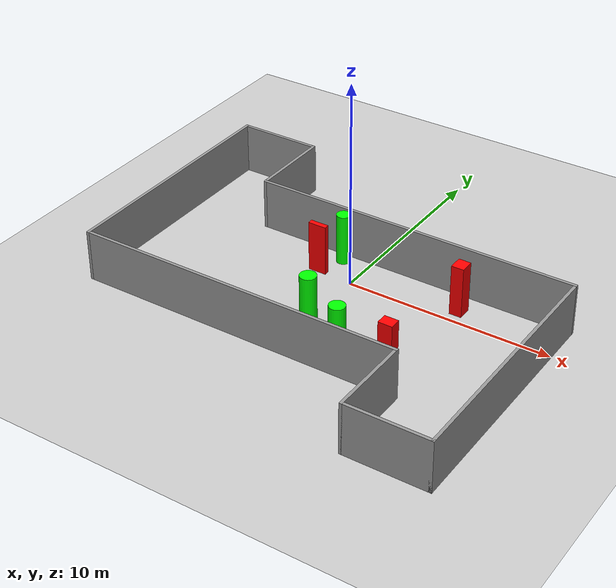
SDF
<sdf version="1.7">
 <world name="default">
  <light name="sun" type="directional">
   <pose>0 0 10 0 -0 0</pose>
   <diffuse>0.8 0.8 0.8 1</diffuse>
   <specular>0.2 0.2 0.2 1</specular>
   <attenuation>
    <range>1000</range>
    <constant>0.9</constant>
    <linear>0.01</linear>
    <quadratic>0.001</quadratic>
   </attenuation>
   <direction>-0.5 0.1 -0.9</direction>
   <spot><inner_angle>0</inner_angle><outer_angle>0</outer_angle><falloff>0</falloff></spot>
  </light>
  <model name="ground_plane">
   <static>1</static>
   <link name="link">
    <collision name="collision">
     <geometry><plane><normal>0 0 1</normal><size>100 100</size></plane></geometry>
     <surface>
      <contact><collide_bitmask>65535</collide_bitmask></contact>
      <friction><ode><mu>100</mu><mu2>50</mu2></ode></friction>
     </surface>
    </collision>
    <visual name="visual">
     <cast_shadows>0</cast_shadows>
     <geometry><plane><normal>0 0 1</normal><size>100 100</size></plane></geometry>
     <material>
      <script><uri>file://media/materials/scripts/gazebo.material</uri><name>Gazebo/Grey</name></script>
     </material>
    </visual>
   </link>
  </model>
  <gravity>0 0 -9.8</gravity>
  <magnetic_field>6e-06 2.3e-05 -4.2e-05</magnetic_field>
  <atmosphere type="adiabatic"/>
  <physics type="ode">
   <max_step_size>0.001</max_step_size>
   <real_time_factor>1</real_time_factor>
   <real_time_update_rate>1000</real_time_update_rate>
  </physics>
  <scene><ambient>0.4 0.4 0.4 1</ambient><background>0.7 0.7 0.7 1</background><shadows>1</shadows></scene>
  <spherical_coordinates>
   <surface_model>EARTH_WGS84</surface_model>
   <latitude_deg>0</latitude_deg>
   <longitude_deg>0</longitude_deg>
   <elevation>0</elevation>
   <heading_deg>0</heading_deg>
  </spherical_coordinates>
  <model name="my_base_walls">
   <link name="Wall_13">
    <collision name="Wall_13_Collision">
     <geometry><box><size>12.15 0.15 2.5</size></box></geometry>
     <pose>0 0 1.25 0 -0 0</pose>
    </collision>
    <visual name="Wall_13_Visual">
     <pose>0 0 1.25 0 -0 0</pose>
     <geometry><box><size>12.15 0.15 2.5</size></box></geometry>
     <material>
      <script><uri>file://media/materials/scripts/gazebo.material</uri><name>Gazebo/Grey</name></script>
      <ambient>1 1 1 1</ambient>
     </material>
     <meta><layer>0</layer></meta>
    </visual>
    <pose>10 -2 0 0 -0 1.5708</pose>
   </link>
   <link name="Wall_15">
    <collision name="Wall_15_Collision">
     <geometry><box><size>16.15 0.15 2.5</size></box></geometry>
     <pose>0 0 1.25 0 -0 0</pose>
    </collision>
    <visual name="Wall_15_Visual">
     <pose>0 0 1.25 0 -0 0</pose>
     <geometry><box><size>16.15 0.15 2.5</size></box></geometry>
     <material>
      <script><uri>file://media/materials/scripts/gazebo.material</uri><name>Gazebo/Grey</name></script>
      <ambient>1 1 1 1</ambient>
     </material>
     <meta><layer>0</layer></meta>
    </visual>
    <pose>2 4 0 0 -0 3.14159</pose>
   </link>
   <link name="Wall_17">
    <collision name="Wall_17_Collision">
     <geometry><box><size>4.15 0.15 2.5</size></box></geometry>
     <pose>0 0 1.25 0 -0 0</pose>
    </collision>
    <visual name="Wall_17_Visual">
     <pose>0 0 1.25 0 -0 0</pose>
     <geometry><box><size>4.15 0.15 2.5</size></box></geometry>
     <material>
      <script><uri>file://media/materials/scripts/gazebo.material</uri><name>Gazebo/Grey</name></script>
      <ambient>1 1 1 1</ambient>
     </material>
     <meta><layer>0</layer></meta>
    </visual>
    <pose>6 -6 0 0 -0 -1.5708</pose>
   </link>
   <link name="Wall_19">
    <collision name="Wall_19_Collision">
     <geometry><box><size>12.15 0.15 2.5</size></box></geometry>
     <pose>0 0 1.25 0 -0 0</pose>
    </collision>
    <visual name="Wall_19_Visual">
     <pose>0 0 1.25 0 -0 0</pose>
     <geometry><box><size>12.15 0.15 2.5</size></box></geometry>
     <material>
      <script><uri>file://media/materials/scripts/gazebo.material</uri><name>Gazebo/Grey</name></script>
      <ambient>1 1 1 1</ambient>
     </material>
     <meta><layer>0</layer></meta>
    </visual>
    <pose>-10 2 0 0 -0 1.5708</pose>
   </link>
   <link name="Wall_21">
    <collision name="Wall_21_Collision">
     <geometry><box><size>4.15 0.15 2.5</size></box></geometry>
     <pose>0 0 1.25 0 -0 0</pose>
    </collision>
    <visual name="Wall_21_Visual">
     <pose>0 0 1.25 0 -0 0</pose>
     <geometry><box><size>4.15 0.15 2.5</size></box></geometry>
     <material>
      <script><uri>file://media/materials/scripts/gazebo.material</uri><name>Gazebo/Grey</name></script>
      <ambient>1 1 1 1</ambient>
     </material>
     <meta><layer>0</layer></meta>
    </visual>
    <pose>-8 8 0 0 -0 0</pose>
   </link>
   <link name="Wall_23">
    <collision name="Wall_23_Collision">
     <geometry><box><size>4.15 0.15 2.5</size></box></geometry>
     <pose>0 0 1.25 0 -0 0</pose>
    </collision>
    <visual name="Wall_23_Visual">
     <pose>0 0 1.25 0 -0 0</pose>
     <geometry><box><size>4.15 0.15 2.5</size></box></geometry>
     <material>
      <script><uri>file://media/materials/scripts/gazebo.material</uri><name>Gazebo/Grey</name></script>
      <ambient>1 1 1 1</ambient>
     </material>
     <meta><layer>0</layer></meta>
    </visual>
    <pose>-6 6 0 0 -0 -1.5708</pose>
   </link>
   <link name="Wall_25">
    <collision name="Wall_25_Collision">
     <geometry><box><size>4.15 0.15 2.5</size></box></geometry>
     <pose>0 0 1.25 0 -0 0</pose>
    </collision>
    <visual name="Wall_25_Visual">
     <pose>0 0 1.25 0 -0 0</pose>
     <geometry><box><size>4.15 0.15 2.5</size></box></geometry>
     <material>
      <script><uri>file://media/materials/scripts/gazebo.material</uri><name>Gazebo/Grey</name></script>
      <ambient>1 1 1 1</ambient>
     </material>
     <meta><layer>0</layer></meta>
    </visual>
    <pose>8 -8 0 0 -0 0</pose>
   </link>
   <link name="Wall_9">
    <collision name="Wall_9_Collision">
     <geometry><box><size>16.15 0.15 2.5</size></box></geometry>
     <pose>0 0 1.25 0 -0 0</pose>
    </collision>
    <visual name="Wall_9_Visual">
     <pose>0 0 1.25 0 -0 0</pose>
     <geometry><box><size>16.15 0.15 2.5</size></box></geometry>
     <material>
      <script><uri>file://media/materials/scripts/gazebo.material</uri><name>Gazebo/Grey</name></script>
      <ambient>1 1 1 1</ambient>
     </material>
     <meta><layer>0</layer></meta>
    </visual>
    <pose>-2 -4 0 0 -0 3.14159</pose>
   </link>
   <static>1</static>
   <pose>-0 -2 0 0 -0 0</pose>
  </model>
  <model name="cylinder1">
   <static>1</static>
   <link name="link">
    <inertial>
     <mass>1</mass>
     <inertia><ixx>0.5</ixx><ixy>0</ixy><ixz>0</ixz><iyy>0.5</iyy><iyz>0</iyz><izz>1</izz></inertia>
    </inertial>
    <collision name="collision">
     <geometry><cylinder><radius>0.3800353463518807</radius><length>2.5</length></cylinder></geometry>
    </collision>
    <visual name="visual">
     <geometry><cylinder><radius>0.3800353463518807</radius><length>2.5</length></cylinder></geometry>
     <material>
      <ambient>0 1 0 1</ambient>
      <diffuse>0 1 0 1</diffuse>
      <specular>0.1 0.1 0.1 1</specular>
      <emissive>0 0 0 0</emissive>
     </material>
    </visual>
   </link>
   <pose>2.382546326337998 -4.730627206474595 1.25 0 0 0</pose>
  </model>
  <model name="cylinder2">
   <static>1</static>
   <link name="link">
    <inertial>
     <mass>1</mass>
     <inertia><ixx>0.5</ixx><ixy>0</ixy><ixz>0</ixz><iyy>0.5</iyy><iyz>0</iyz><izz>1</izz></inertia>
    </inertial>
    <collision name="collision">
     <geometry><cylinder><radius>0.39384556956273176</radius><length>2.5</length></cylinder></geometry>
    </collision>
    <visual name="visual">
     <geometry><cylinder><radius>0.39384556956273176</radius><length>2.5</length></cylinder></geometry>
     <material>
      <ambient>0 1 0 1</ambient>
      <diffuse>0 1 0 1</diffuse>
      <specular>0.1 0.1 0.1 1</specular>
      <emissive>0 0 0 0</emissive>
     </material>
    </visual>
   </link>
   <pose>0.13258888397115953 -3.5469758863874734 1.25 0 0 0</pose>
  </model>
  <model name="cylinder3">
   <static>1</static>
   <link name="link">
    <inertial>
     <mass>1</mass>
     <inertia><ixx>0.5</ixx><ixy>0</ixy><ixz>0</ixz><iyy>0.5</iyy><iyz>0</iyz><izz>1</izz></inertia>
    </inertial>
    <collision name="collision">
     <geometry><cylinder><radius>0.33831197546235736</radius><length>2.5</length></cylinder></geometry>
    </collision>
    <visual name="visual">
     <geometry><cylinder><radius>0.33831197546235736</radius><length>2.5</length></cylinder></geometry>
     <material>
      <ambient>0 1 0 1</ambient>
      <diffuse>0 1 0 1</diffuse>
      <specular>0.1 0.1 0.1 1</specular>
      <emissive>0 0 0 0</emissive>
     </material>
    </visual>
   </link>
   <pose>-1.2896180079305033 1.4542686298768155 1.25 0 0 0</pose>
  </model>
  <model name="box1">
   <static>1</static>
   <link name="link">
    <inertial>
     <mass>1</mass>
     <inertia><ixx>0.083</ixx><ixy>0</ixy><ixz>0</ixz><iyy>0.083</iyy><iyz>0</iyz><izz>0.083</izz></inertia>
    </inertial>
    <collision name="collision">
     <geometry><box><size>0.6815495001863955 0.5460497607915028 2.5</size></box></geometry>
    </collision>
    <visual name="visual">
     <geometry><box><size>0.6815495001863955 0.5460497607915028 2.5</size></box></geometry>
     <material>
      <ambient>1 0 0 1</ambient>
      <diffuse>1 0 0 1</diffuse>
      <specular>0.1 0.1 0.1 1</specular>
      <emissive>0 0 0 0</emissive>
     </material>
    </visual>
    <sensor name="my_contact" type="contact">
     <contact><collision>box_collision</collision><topic>__default_topic__</topic></contact>
    </sensor>
   </link>
   <pose>4.742946356818447 -4.5395008182752195 1.25 0 0 0</pose>
  </model>
  <model name="box2">
   <static>1</static>
   <link name="link">
    <inertial>
     <mass>1</mass>
     <inertia><ixx>0.083</ixx><ixy>0</ixy><ixz>0</ixz><iyy>0.083</iyy><iyz>0</iyz><izz>0.083</izz></inertia>
    </inertial>
    <collision name="collision">
     <geometry><box><size>0.8948965838574052 0.24918828163252724 2.5</size></box></geometry>
    </collision>
    <visual name="visual">
     <geometry><box><size>0.8948965838574052 0.24918828163252724 2.5</size></box></geometry>
     <material>
      <ambient>1 0 0 1</ambient>
      <diffuse>1 0 0 1</diffuse>
      <specular>0.1 0.1 0.1 1</specular>
      <emissive>0 0 0 0</emissive>
     </material>
    </visual>
    <sensor name="my_contact" type="contact">
     <contact><collision>box_collision</collision><topic>__default_topic__</topic></contact>
    </sensor>
   </link>
   <pose>-1.7929676671894423 0.142416244479735 1.25 0 0 0</pose>
  </model>
  <model name="box3">
   <static>1</static>
   <link name="link">
    <inertial>
     <mass>1</mass>
     <inertia><ixx>0.083</ixx><ixy>0</ixy><ixz>0</ixz><iyy>0.083</iyy><iyz>0</iyz><izz>0.083</izz></inertia>
    </inertial>
    <collision name="collision">
     <geometry><box><size>0.5969491536131772 0.6745498850373661 2.5</size></box></geometry>
    </collision>
    <visual name="visual">
     <geometry><box><size>0.5969491536131772 0.6745498850373661 2.5</size></box></geometry>
     <material>
      <ambient>1 0 0 1</ambient>
      <diffuse>1 0 0 1</diffuse>
      <specular>0.1 0.1 0.1 1</specular>
      <emissive>0 0 0 0</emissive>
     </material>
    </visual>
    <sensor name="my_contact" type="contact">
     <contact><collision>box_collision</collision><topic>__default_topic__</topic></contact>
    </sensor>
   </link>
   <pose>5.182613600742254 0.763523683513327 1.25 0 0 0</pose>
  </model>
 </world>
</sdf>
